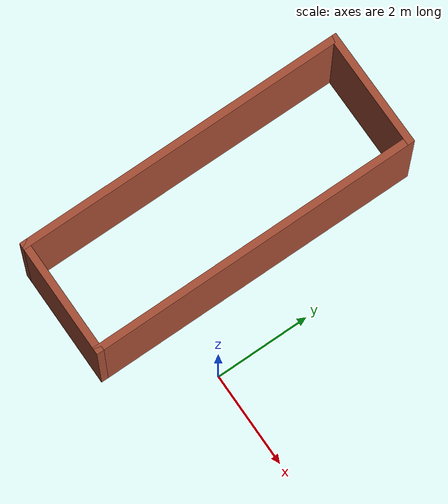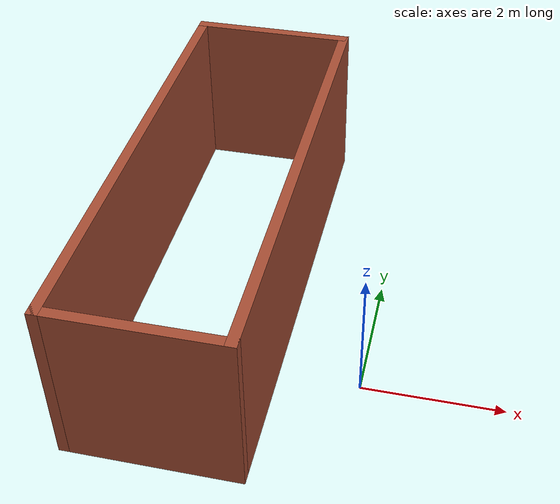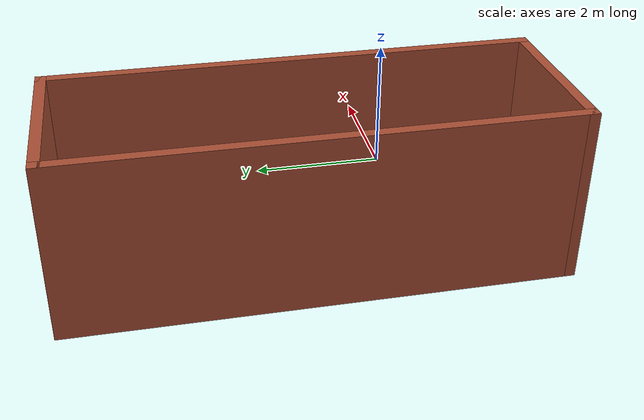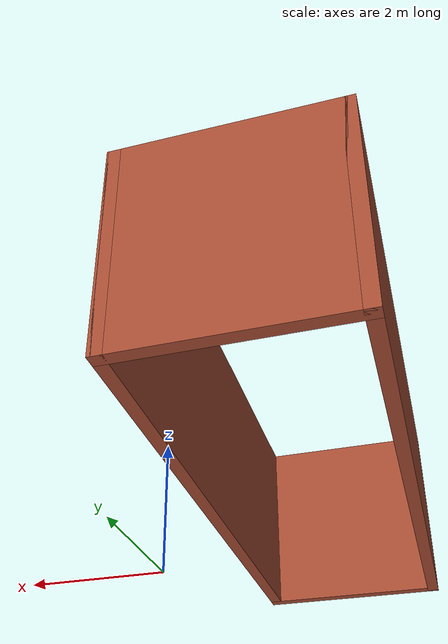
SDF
<?xml version='1.0'?>
<sdf version='1.6'>
  <model name='imaze'>
    <pose frame=''>-2.40042 1.64596 0 0 -0 0</pose>
    <link name='Wall_15'>
      <collision name='Wall_15_Collision'>
        <geometry>
          <box>
            <size>2.5 0.15 2.5</size>
          </box>
        </geometry>
        <pose frame=''>0 0 1.25 0 -0 0</pose>
      </collision>
      <visual name='Wall_15_Visual'>
        <pose frame=''>0 0 1.25 0 -0 0</pose>
        <geometry>
          <box>
            <size>2.5 0.15 2.5</size>
          </box>
        </geometry>
        <material>
          <script>
            <uri>file://media/materials/scripts/gazebo.material</uri>
            <name>Gazebo/Bricks</name>
          </script>
          <ambient>1 1 1 1</ambient>
        </material>
      </visual>
      <pose frame=''>0 3.425 0 0 -0 0</pose>
    </link>
    <link name='Wall_16'>
      <collision name='Wall_16_Collision'>
        <geometry>
          <box>
            <size>7 0.15 2.5</size>
          </box>
        </geometry>
        <pose frame=''>0 0 1.25 0 -0 0</pose>
      </collision>
      <visual name='Wall_16_Visual'>
        <pose frame=''>0 0 1.25 0 -0 0</pose>
        <geometry>
          <box>
            <size>7 0.15 2.5</size>
          </box>
        </geometry>
        <material>
          <script>
            <uri>file://media/materials/scripts/gazebo.material</uri>
            <name>Gazebo/Bricks</name>
          </script>
          <ambient>1 1 1 1</ambient>
        </material>
      </visual>
      <pose frame=''>1.175 0 0 0 0 -1.5708</pose>
    </link>
    <link name='Wall_17'>
      <collision name='Wall_17_Collision'>
        <geometry>
          <box>
            <size>2.5 0.15 2.5</size>
          </box>
        </geometry>
        <pose frame=''>0 0 1.25 0 -0 0</pose>
      </collision>
      <visual name='Wall_17_Visual'>
        <pose frame=''>0 0 1.25 0 -0 0</pose>
        <geometry>
          <box>
            <size>2.5 0.15 2.5</size>
          </box>
        </geometry>
        <material>
          <script>
            <uri>file://media/materials/scripts/gazebo.material</uri>
            <name>Gazebo/Bricks</name>
          </script>
          <ambient>1 1 1 1</ambient>
        </material>
      </visual>
      <pose frame=''>0 -3.425 0 0 -0 3.14159</pose>
    </link>
    <link name='Wall_18'>
      <collision name='Wall_18_Collision'>
        <geometry>
          <box>
            <size>7 0.15 2.5</size>
          </box>
        </geometry>
        <pose frame=''>0 0 1.25 0 -0 0</pose>
      </collision>
      <visual name='Wall_18_Visual'>
        <pose frame=''>0 0 1.25 0 -0 0</pose>
        <geometry>
          <box>
            <size>7 0.15 2.5</size>
          </box>
        </geometry>
        <material>
          <script>
            <uri>file://media/materials/scripts/gazebo.material</uri>
            <name>Gazebo/Bricks</name>
          </script>
          <ambient>1 1 1 1</ambient>
        </material>
      </visual>
      <pose frame=''>-1.175 0 0 0 -0 1.5708</pose>
    </link>
    <static>1</static>
  </model>
</sdf>
